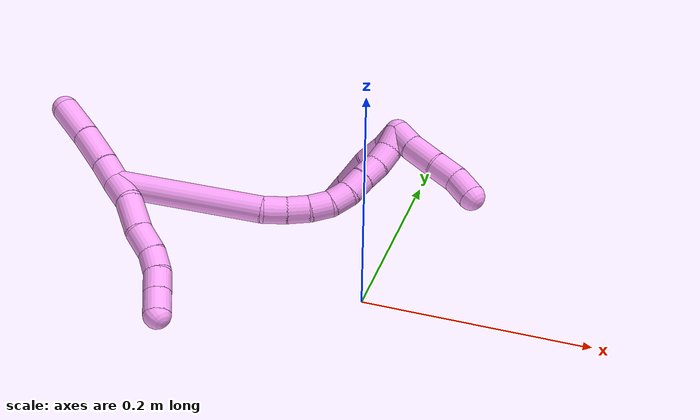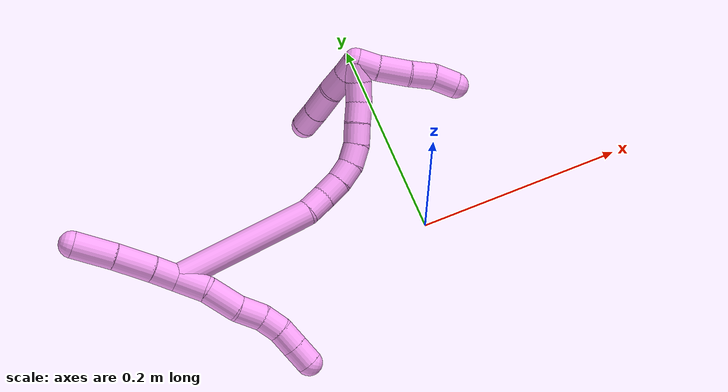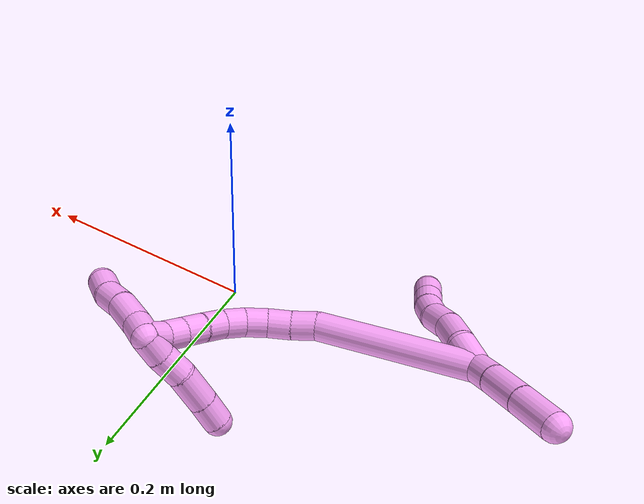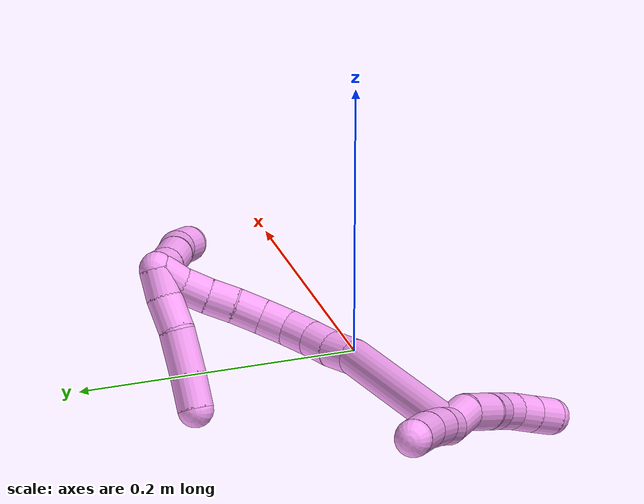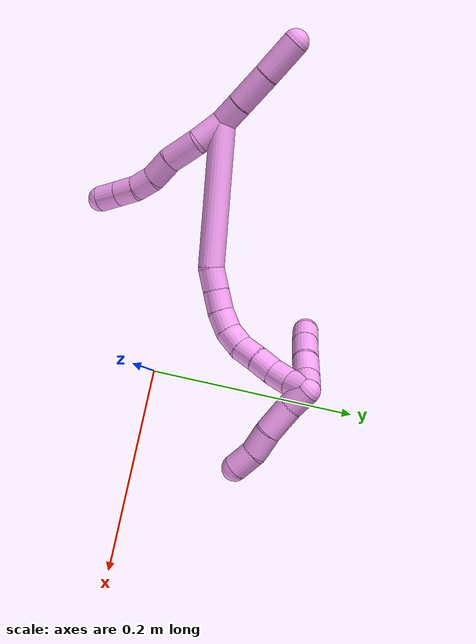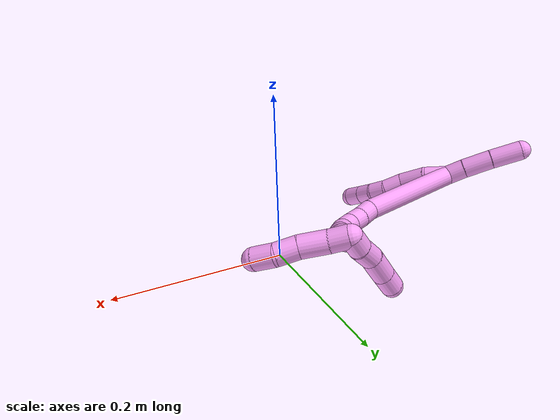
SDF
<sdf version="1.7">
 <world name="default">
  <model name="4">
   <static>0</static>
   <link name="4">
    <collision name="collision-cylinder-e_1_2_8">
     <pose>0.000804 -0.002881 -0.014358 2.94357 0.054824 0.538624</pose>
     <geometry><cylinder><radius>0.0125</radius><length>0.029332</length></cylinder></geometry>
     <surface>
      <friction><ode><mu>1.16</mu><mu2>1.16</mu2><slip1>0</slip1><slip2>0</slip2></ode></friction>
      <contact><ode><kp>1e+06</kp><kd>1</kd><max_vel>0</max_vel><min_depth>0.001</min_depth></ode></contact>
     </surface>
    </collision>
    <visual name="visual-cylinder-e_1_2_8">
     <pose>0.000804 -0.002881 -0.014358 2.94357 0.054824 0.538624</pose>
     <geometry><cylinder><radius>0.0125</radius><length>0.029332</length></cylinder></geometry>
     <material><ambient>1 0.65098 0.996078 1</ambient></material>
    </visual>
    <collision name="collision-cylinder-e_2_8_9">
     <pose>-0.002616 -0.007892 -0.044746 3.00948 -0.255462 -2.19031</pose>
     <geometry><cylinder><radius>0.0125</radius><length>0.033428</length></cylinder></geometry>
     <surface>
      <friction><ode><mu>1.16</mu><mu2>1.16</mu2><slip1>0</slip1><slip2>0</slip2></ode></friction>
      <contact><ode><kp>1e+06</kp><kd>1</kd><max_vel>0</max_vel><min_depth>0.001</min_depth></ode></contact>
     </surface>
    </collision>
    <visual name="visual-cylinder-e_2_8_9">
     <pose>-0.002616 -0.007892 -0.044746 3.00948 -0.255462 -2.19031</pose>
     <geometry><cylinder><radius>0.0125</radius><length>0.033428</length></cylinder></geometry>
     <material><ambient>1 0.65098 0.996078 1</ambient></material>
    </visual>
    <collision name="collision-cylinder-e_3_9_10">
     <pose>-0.008818 -0.009061 -0.073152 -3.06407 -0.158021 2.23069</pose>
     <geometry><cylinder><radius>0.0125</radius><length>0.025138</length></cylinder></geometry>
     <surface>
      <friction><ode><mu>1.16</mu><mu2>1.16</mu2><slip1>0</slip1><slip2>0</slip2></ode></friction>
      <contact><ode><kp>1e+06</kp><kd>1</kd><max_vel>0</max_vel><min_depth>0.001</min_depth></ode></contact>
     </surface>
    </collision>
    <visual name="visual-cylinder-e_3_9_10">
     <pose>-0.008818 -0.009061 -0.073152 -3.06407 -0.158021 2.23069</pose>
     <geometry><cylinder><radius>0.0125</radius><length>0.025138</length></cylinder></geometry>
     <material><ambient>1 0.65098 0.996078 1</ambient></material>
    </visual>
    <collision name="collision-cylinder-e_4_10_11">
     <pose>-0.013689 -0.009772 -0.095389 2.97368 -0.281579 -2.06991</pose>
     <geometry><cylinder><radius>0.0125</radius><length>0.020825</length></cylinder></geometry>
     <surface>
      <friction><ode><mu>1.16</mu><mu2>1.16</mu2><slip1>0</slip1><slip2>0</slip2></ode></friction>
      <contact><ode><kp>1e+06</kp><kd>1</kd><max_vel>0</max_vel><min_depth>0.001</min_depth></ode></contact>
     </surface>
    </collision>
    <visual name="visual-cylinder-e_4_10_11">
     <pose>-0.013689 -0.009772 -0.095389 2.97368 -0.281579 -2.06991</pose>
     <geometry><cylinder><radius>0.0125</radius><length>0.020825</length></cylinder></geometry>
     <material><ambient>1 0.65098 0.996078 1</ambient></material>
    </visual>
    <collision name="collision-cylinder-e_5_11_12">
     <pose>-0.021006 -0.014527 -0.113819 2.7961 -0.452286 -1.84392</pose>
     <geometry><cylinder><radius>0.0125</radius><length>0.020247</length></cylinder></geometry>
     <surface>
      <friction><ode><mu>1.16</mu><mu2>1.16</mu2><slip1>0</slip1><slip2>0</slip2></ode></friction>
      <contact><ode><kp>1e+06</kp><kd>1</kd><max_vel>0</max_vel><min_depth>0.001</min_depth></ode></contact>
     </surface>
    </collision>
    <visual name="visual-cylinder-e_5_11_12">
     <pose>-0.021006 -0.014527 -0.113819 2.7961 -0.452286 -1.84392</pose>
     <geometry><cylinder><radius>0.0125</radius><length>0.020247</length></cylinder></geometry>
     <material><ambient>1 0.65098 0.996078 1</ambient></material>
    </visual>
    <collision name="collision-cylinder-e_6_12_6">
     <pose>-0.029973 -0.020879 -0.131288 2.78973 -0.446759 -1.81359</pose>
     <geometry><cylinder><radius>0.0125</radius><length>0.02103</length></cylinder></geometry>
     <surface>
      <friction><ode><mu>1.16</mu><mu2>1.16</mu2><slip1>0</slip1><slip2>0</slip2></ode></friction>
      <contact><ode><kp>1e+06</kp><kd>1</kd><max_vel>0</max_vel><min_depth>0.001</min_depth></ode></contact>
     </surface>
    </collision>
    <visual name="visual-cylinder-e_6_12_6">
     <pose>-0.029973 -0.020879 -0.131288 2.78973 -0.446759 -1.81359</pose>
     <geometry><cylinder><radius>0.0125</radius><length>0.02103</length></cylinder></geometry>
     <material><ambient>1 0.65098 0.996078 1</ambient></material>
    </visual>
    <collision name="collision-cylinder-e_1_2_13">
     <pose>0.002009 -0.000947 0.011866 0.079607 0.167232 0.006675</pose>
     <geometry><cylinder><radius>0.0125</radius><length>0.024144</length></cylinder></geometry>
     <surface>
      <friction><ode><mu>1.16</mu><mu2>1.16</mu2><slip1>0</slip1><slip2>0</slip2></ode></friction>
      <contact><ode><kp>1e+06</kp><kd>1</kd><max_vel>0</max_vel><min_depth>0.001</min_depth></ode></contact>
     </surface>
    </collision>
    <visual name="visual-cylinder-e_1_2_13">
     <pose>0.002009 -0.000947 0.011866 0.079607 0.167232 0.006675</pose>
     <geometry><cylinder><radius>0.0125</radius><length>0.024144</length></cylinder></geometry>
     <material><ambient>1 0.65098 0.996078 1</ambient></material>
    </visual>
    <collision name="collision-cylinder-e_2_13_14">
     <pose>0.005857 -0.002946 0.041848 0.058053 0.100949 0.002934</pose>
     <geometry><cylinder><radius>0.0125</radius><length>0.03648</length></cylinder></geometry>
     <surface>
      <friction><ode><mu>1.16</mu><mu2>1.16</mu2><slip1>0</slip1><slip2>0</slip2></ode></friction>
      <contact><ode><kp>1e+06</kp><kd>1</kd><max_vel>0</max_vel><min_depth>0.001</min_depth></ode></contact>
     </surface>
    </collision>
    <visual name="visual-cylinder-e_2_13_14">
     <pose>0.005857 -0.002946 0.041848 0.058053 0.100949 0.002934</pose>
     <geometry><cylinder><radius>0.0125</radius><length>0.03648</length></cylinder></geometry>
     <material><ambient>1 0.65098 0.996078 1</ambient></material>
    </visual>
    <collision name="collision-cylinder-e_3_14_5">
     <pose>0.008512 -0.005016 0.07961 0.051728 0.04151 0.001074</pose>
     <geometry><cylinder><radius>0.0125</radius><length>0.039376</length></cylinder></geometry>
     <surface>
      <friction><ode><mu>1.16</mu><mu2>1.16</mu2><slip1>0</slip1><slip2>0</slip2></ode></friction>
      <contact><ode><kp>1e+06</kp><kd>1</kd><max_vel>0</max_vel><min_depth>0.001</min_depth></ode></contact>
     </surface>
    </collision>
    <visual name="visual-cylinder-e_3_14_5">
     <pose>0.008512 -0.005016 0.07961 0.051728 0.04151 0.001074</pose>
     <geometry><cylinder><radius>0.0125</radius><length>0.039376</length></cylinder></geometry>
     <material><ambient>1 0.65098 0.996078 1</ambient></material>
    </visual>
    <collision name="collision-cylinder-e_1_2_15">
     <pose>0.032575 0.03289 -0.050687 -2.566 0.494447 -1.41202</pose>
     <geometry><cylinder><radius>0.0125</radius><length>0.137288</length></cylinder></geometry>
     <surface>
      <friction><ode><mu>1.16</mu><mu2>1.16</mu2><slip1>0</slip1><slip2>0</slip2></ode></friction>
      <contact><ode><kp>1e+06</kp><kd>1</kd><max_vel>0</max_vel><min_depth>0.001</min_depth></ode></contact>
     </surface>
    </collision>
    <visual name="visual-cylinder-e_1_2_15">
     <pose>0.032575 0.03289 -0.050687 -2.566 0.494447 -1.41202</pose>
     <geometry><cylinder><radius>0.0125</radius><length>0.137288</length></cylinder></geometry>
     <material><ambient>1 0.65098 0.996078 1</ambient></material>
    </visual>
    <collision name="collision-cylinder-e_2_15_16">
     <pose>0.07084 0.073128 -0.107112 -2.23378 0.548039 -1.04539</pose>
     <geometry><cylinder><radius>0.0125</radius><length>0.021846</length></cylinder></geometry>
     <surface>
      <friction><ode><mu>1.16</mu><mu2>1.16</mu2><slip1>0</slip1><slip2>0</slip2></ode></friction>
      <contact><ode><kp>1e+06</kp><kd>1</kd><max_vel>0</max_vel><min_depth>0.001</min_depth></ode></contact>
     </surface>
    </collision>
    <visual name="visual-cylinder-e_2_15_16">
     <pose>0.07084 0.073128 -0.107112 -2.23378 0.548039 -1.04539</pose>
     <geometry><cylinder><radius>0.0125</radius><length>0.021846</length></cylinder></geometry>
     <material><ambient>1 0.65098 0.996078 1</ambient></material>
    </visual>
    <collision name="collision-cylinder-e_3_16_17">
     <pose>0.082886 0.086812 -0.11799 -2.25242 0.661765 -1.24944</pose>
     <geometry><cylinder><radius>0.0125</radius><length>0.020682</length></cylinder></geometry>
     <surface>
      <friction><ode><mu>1.16</mu><mu2>1.16</mu2><slip1>0</slip1><slip2>0</slip2></ode></friction>
      <contact><ode><kp>1e+06</kp><kd>1</kd><max_vel>0</max_vel><min_depth>0.001</min_depth></ode></contact>
     </surface>
    </collision>
    <visual name="visual-cylinder-e_3_16_17">
     <pose>0.082886 0.086812 -0.11799 -2.25242 0.661765 -1.24944</pose>
     <geometry><cylinder><radius>0.0125</radius><length>0.020682</length></cylinder></geometry>
     <material><ambient>1 0.65098 0.996078 1</ambient></material>
    </visual>
    <collision name="collision-cylinder-e_4_17_18">
     <pose>0.096098 0.099654 -0.126452 -2.04283 0.753715 -1.14771</pose>
     <geometry><cylinder><radius>0.0125</radius><length>0.02004</length></cylinder></geometry>
     <surface>
      <friction><ode><mu>1.16</mu><mu2>1.16</mu2><slip1>0</slip1><slip2>0</slip2></ode></friction>
      <contact><ode><kp>1e+06</kp><kd>1</kd><max_vel>0</max_vel><min_depth>0.001</min_depth></ode></contact>
     </surface>
    </collision>
    <visual name="visual-cylinder-e_4_17_18">
     <pose>0.096098 0.099654 -0.126452 -2.04283 0.753715 -1.14771</pose>
     <geometry><cylinder><radius>0.0125</radius><length>0.02004</length></cylinder></geometry>
     <material><ambient>1 0.65098 0.996078 1</ambient></material>
    </visual>
    <collision name="collision-cylinder-e_5_18_19">
     <pose>0.110647 0.112602 -0.130005 -1.60663 0.873359 -0.901149</pose>
     <geometry><cylinder><radius>0.0125</radius><length>0.020071</length></cylinder></geometry>
     <surface>
      <friction><ode><mu>1.16</mu><mu2>1.16</mu2><slip1>0</slip1><slip2>0</slip2></ode></friction>
      <contact><ode><kp>1e+06</kp><kd>1</kd><max_vel>0</max_vel><min_depth>0.001</min_depth></ode></contact>
     </surface>
    </collision>
    <visual name="visual-cylinder-e_5_18_19">
     <pose>0.110647 0.112602 -0.130005 -1.60663 0.873359 -0.901149</pose>
     <geometry><cylinder><radius>0.0125</radius><length>0.020071</length></cylinder></geometry>
     <material><ambient>1 0.65098 0.996078 1</ambient></material>
    </visual>
    <collision name="collision-cylinder-e_6_19_20">
     <pose>0.126118 0.124891 -0.127813 -1.17803 0.887785 -0.61528</pose>
     <geometry><cylinder><radius>0.0125</radius><length>0.020057</length></cylinder></geometry>
     <surface>
      <friction><ode><mu>1.16</mu><mu2>1.16</mu2><slip1>0</slip1><slip2>0</slip2></ode></friction>
      <contact><ode><kp>1e+06</kp><kd>1</kd><max_vel>0</max_vel><min_depth>0.001</min_depth></ode></contact>
     </surface>
    </collision>
    <visual name="visual-cylinder-e_6_19_20">
     <pose>0.126118 0.124891 -0.127813 -1.17803 0.887785 -0.61528</pose>
     <geometry><cylinder><radius>0.0125</radius><length>0.020057</length></cylinder></geometry>
     <material><ambient>1 0.65098 0.996078 1</ambient></material>
    </visual>
    <collision name="collision-cylinder-e_7_20_21">
     <pose>0.141335 0.137157 -0.123488 -1.28254 0.837868 -0.641857</pose>
     <geometry><cylinder><radius>0.0125</radius><length>0.020015</length></cylinder></geometry>
     <surface>
      <friction><ode><mu>1.16</mu><mu2>1.16</mu2><slip1>0</slip1><slip2>0</slip2></ode></friction>
      <contact><ode><kp>1e+06</kp><kd>1</kd><max_vel>0</max_vel><min_depth>0.001</min_depth></ode></contact>
     </surface>
    </collision>
    <visual name="visual-cylinder-e_7_20_21">
     <pose>0.141335 0.137157 -0.123488 -1.28254 0.837868 -0.641857</pose>
     <geometry><cylinder><radius>0.0125</radius><length>0.020015</length></cylinder></geometry>
     <material><ambient>1 0.65098 0.996078 1</ambient></material>
    </visual>
    <collision name="collision-cylinder-e_8_21_22">
     <pose>0.156578 0.148939 -0.118372 -1.0311 0.895544 -0.531478</pose>
     <geometry><cylinder><radius>0.0125</radius><length>0.020001</length></cylinder></geometry>
     <surface>
      <friction><ode><mu>1.16</mu><mu2>1.16</mu2><slip1>0</slip1><slip2>0</slip2></ode></friction>
      <contact><ode><kp>1e+06</kp><kd>1</kd><max_vel>0</max_vel><min_depth>0.001</min_depth></ode></contact>
     </surface>
    </collision>
    <visual name="visual-cylinder-e_8_21_22">
     <pose>0.156578 0.148939 -0.118372 -1.0311 0.895544 -0.531478</pose>
     <geometry><cylinder><radius>0.0125</radius><length>0.020001</length></cylinder></geometry>
     <material><ambient>1 0.65098 0.996078 1</ambient></material>
    </visual>
    <collision name="collision-cylinder-e_9_22_1">
     <pose>0.172805 0.157715 -0.110982 -0.685047 1.00105 -0.385248</pose>
     <geometry><cylinder><radius>0.0125</radius><length>0.02</length></cylinder></geometry>
     <surface>
      <friction><ode><mu>1.16</mu><mu2>1.16</mu2><slip1>0</slip1><slip2>0</slip2></ode></friction>
      <contact><ode><kp>1e+06</kp><kd>1</kd><max_vel>0</max_vel><min_depth>0.001</min_depth></ode></contact>
     </surface>
    </collision>
    <visual name="visual-cylinder-e_9_22_1">
     <pose>0.172805 0.157715 -0.110982 -0.685047 1.00105 -0.385248</pose>
     <geometry><cylinder><radius>0.0125</radius><length>0.02</length></cylinder></geometry>
     <material><ambient>1 0.65098 0.996078 1</ambient></material>
    </visual>
    <collision name="collision-cylinder-e_1_1_23">
     <pose>0.181006 0.161237 -0.117609 -3.13152 -0.020274 2.21977</pose>
     <geometry><cylinder><radius>0.0125</radius><length>0.021614</length></cylinder></geometry>
     <surface>
      <friction><ode><mu>1.16</mu><mu2>1.16</mu2><slip1>0</slip1><slip2>0</slip2></ode></friction>
      <contact><ode><kp>1e+06</kp><kd>1</kd><max_vel>0</max_vel><min_depth>0.001</min_depth></ode></contact>
     </surface>
    </collision>
    <visual name="visual-cylinder-e_1_1_23">
     <pose>0.181006 0.161237 -0.117609 -3.13152 -0.020274 2.21977</pose>
     <geometry><cylinder><radius>0.0125</radius><length>0.021614</length></cylinder></geometry>
     <material><ambient>1 0.65098 0.996078 1</ambient></material>
    </visual>
    <collision name="collision-cylinder-e_2_23_24">
     <pose>0.182695 0.161854 -0.143777 -3.10851 0.123479 -2.61865</pose>
     <geometry><cylinder><radius>0.0125</radius><length>0.03098</length></cylinder></geometry>
     <surface>
      <friction><ode><mu>1.16</mu><mu2>1.16</mu2><slip1>0</slip1><slip2>0</slip2></ode></friction>
      <contact><ode><kp>1e+06</kp><kd>1</kd><max_vel>0</max_vel><min_depth>0.001</min_depth></ode></contact>
     </surface>
    </collision>
    <visual name="visual-cylinder-e_2_23_24">
     <pose>0.182695 0.161854 -0.143777 -3.10851 0.123479 -2.61865</pose>
     <geometry><cylinder><radius>0.0125</radius><length>0.03098</length></cylinder></geometry>
     <material><ambient>1 0.65098 0.996078 1</ambient></material>
    </visual>
    <collision name="collision-cylinder-e_3_24_25">
     <pose>0.185857 0.16454 -0.170816 -2.95718 0.105211 -1.03528</pose>
     <geometry><cylinder><radius>0.0125</radius><length>0.023885</length></cylinder></geometry>
     <surface>
      <friction><ode><mu>1.16</mu><mu2>1.16</mu2><slip1>0</slip1><slip2>0</slip2></ode></friction>
      <contact><ode><kp>1e+06</kp><kd>1</kd><max_vel>0</max_vel><min_depth>0.001</min_depth></ode></contact>
     </surface>
    </collision>
    <visual name="visual-cylinder-e_3_24_25">
     <pose>0.185857 0.16454 -0.170816 -2.95718 0.105211 -1.03528</pose>
     <geometry><cylinder><radius>0.0125</radius><length>0.023885</length></cylinder></geometry>
     <material><ambient>1 0.65098 0.996078 1</ambient></material>
    </visual>
    <collision name="collision-cylinder-e_4_25_4">
     <pose>0.186506 0.166162 -0.194223 3.09422 -0.051457 -1.65346</pose>
     <geometry><cylinder><radius>0.0125</radius><length>0.023521</length></cylinder></geometry>
     <surface>
      <friction><ode><mu>1.16</mu><mu2>1.16</mu2><slip1>0</slip1><slip2>0</slip2></ode></friction>
      <contact><ode><kp>1e+06</kp><kd>1</kd><max_vel>0</max_vel><min_depth>0.001</min_depth></ode></contact>
     </surface>
    </collision>
    <visual name="visual-cylinder-e_4_25_4">
     <pose>0.186506 0.166162 -0.194223 3.09422 -0.051457 -1.65346</pose>
     <geometry><cylinder><radius>0.0125</radius><length>0.023521</length></cylinder></geometry>
     <material><ambient>1 0.65098 0.996078 1</ambient></material>
    </visual>
    <collision name="collision-cylinder-e_1_1_26">
     <pose>0.171328 0.163217 -0.105069 -0.877432 -1.30301 0.687235</pose>
     <geometry><cylinder><radius>0.0125</radius><length>0.020526</length></cylinder></geometry>
     <surface>
      <friction><ode><mu>1.16</mu><mu2>1.16</mu2><slip1>0</slip1><slip2>0</slip2></ode></friction>
      <contact><ode><kp>1e+06</kp><kd>1</kd><max_vel>0</max_vel><min_depth>0.001</min_depth></ode></contact>
     </surface>
    </collision>
    <visual name="visual-cylinder-e_1_1_26">
     <pose>0.171328 0.163217 -0.105069 -0.877432 -1.30301 0.687235</pose>
     <geometry><cylinder><radius>0.0125</radius><length>0.020526</length></cylinder></geometry>
     <material><ambient>1 0.65098 0.996078 1</ambient></material>
    </visual>
    <collision name="collision-cylinder-e_2_26_27">
     <pose>0.14978 0.165917 -0.100044 -0.183856 -1.29117 0.138661</pose>
     <geometry><cylinder><radius>0.0125</radius><length>0.024243</length></cylinder></geometry>
     <surface>
      <friction><ode><mu>1.16</mu><mu2>1.16</mu2><slip1>0</slip1><slip2>0</slip2></ode></friction>
      <contact><ode><kp>1e+06</kp><kd>1</kd><max_vel>0</max_vel><min_depth>0.001</min_depth></ode></contact>
     </surface>
    </collision>
    <visual name="visual-cylinder-e_2_26_27">
     <pose>0.14978 0.165917 -0.100044 -0.183856 -1.29117 0.138661</pose>
     <geometry><cylinder><radius>0.0125</radius><length>0.024243</length></cylinder></geometry>
     <material><ambient>1 0.65098 0.996078 1</ambient></material>
    </visual>
    <collision name="collision-cylinder-e_3_27_28">
     <pose>0.122937 0.169796 -0.094164 -0.900196 -1.30289 0.70597</pose>
     <geometry><cylinder><radius>0.0125</radius><length>0.031509</length></cylinder></geometry>
     <surface>
      <friction><ode><mu>1.16</mu><mu2>1.16</mu2><slip1>0</slip1><slip2>0</slip2></ode></friction>
      <contact><ode><kp>1e+06</kp><kd>1</kd><max_vel>0</max_vel><min_depth>0.001</min_depth></ode></contact>
     </surface>
    </collision>
    <visual name="visual-cylinder-e_3_27_28">
     <pose>0.122937 0.169796 -0.094164 -0.900196 -1.30289 0.70597</pose>
     <geometry><cylinder><radius>0.0125</radius><length>0.031509</length></cylinder></geometry>
     <material><ambient>1 0.65098 0.996078 1</ambient></material>
    </visual>
    <collision name="collision-cylinder-e_4_28_3">
     <pose>0.096434 0.175837 -0.08932 -0.888971 -1.26486 0.671622</pose>
     <geometry><cylinder><radius>0.0125</radius><length>0.023722</length></cylinder></geometry>
     <surface>
      <friction><ode><mu>1.16</mu><mu2>1.16</mu2><slip1>0</slip1><slip2>0</slip2></ode></friction>
      <contact><ode><kp>1e+06</kp><kd>1</kd><max_vel>0</max_vel><min_depth>0.001</min_depth></ode></contact>
     </surface>
    </collision>
    <visual name="visual-cylinder-e_4_28_3">
     <pose>0.096434 0.175837 -0.08932 -0.888971 -1.26486 0.671622</pose>
     <geometry><cylinder><radius>0.0125</radius><length>0.023722</length></cylinder></geometry>
     <material><ambient>1 0.65098 0.996078 1</ambient></material>
    </visual>
    <collision name="collision-sphere-3">
     <pose>0.085124 0.17861 -0.087069 0 -0 0</pose>
     <geometry><sphere><radius>0.0125</radius></sphere></geometry>
     <surface>
      <friction><ode><mu>1.16</mu><mu2>1.16</mu2><slip1>0</slip1><slip2>0</slip2></ode></friction>
      <contact><ode><kp>1e+06</kp><kd>1</kd><max_vel>0</max_vel><min_depth>0.001</min_depth></ode></contact>
     </surface>
    </collision>
    <visual name="visual-sphere-3">
     <pose>0.085124 0.17861 -0.087069 0 -0 0</pose>
     <geometry><sphere><radius>0.0125</radius></sphere></geometry>
     <material><ambient>1 0.65098 0.996078 1</ambient></material>
    </visual>
    <collision name="collision-sphere-28">
     <pose>0.107745 0.173063 -0.091572 0 -0 0</pose>
     <geometry><sphere><radius>0.0125</radius></sphere></geometry>
     <surface>
      <friction><ode><mu>1.16</mu><mu2>1.16</mu2><slip1>0</slip1><slip2>0</slip2></ode></friction>
      <contact><ode><kp>1e+06</kp><kd>1</kd><max_vel>0</max_vel><min_depth>0.001</min_depth></ode></contact>
     </surface>
    </collision>
    <visual name="visual-sphere-28">
     <pose>0.107745 0.173063 -0.091572 0 -0 0</pose>
     <geometry><sphere><radius>0.0125</radius></sphere></geometry>
     <material><ambient>1 0.65098 0.996078 1</ambient></material>
    </visual>
    <collision name="collision-sphere-27">
     <pose>0.13813 0.166528 -0.096755 0 -0 0</pose>
     <geometry><sphere><radius>0.0125</radius></sphere></geometry>
     <surface>
      <friction><ode><mu>1.16</mu><mu2>1.16</mu2><slip1>0</slip1><slip2>0</slip2></ode></friction>
      <contact><ode><kp>1e+06</kp><kd>1</kd><max_vel>0</max_vel><min_depth>0.001</min_depth></ode></contact>
     </surface>
    </collision>
    <visual name="visual-sphere-27">
     <pose>0.13813 0.166528 -0.096755 0 -0 0</pose>
     <geometry><sphere><radius>0.0125</radius></sphere></geometry>
     <material><ambient>1 0.65098 0.996078 1</ambient></material>
    </visual>
    <collision name="collision-sphere-26">
     <pose>0.161431 0.165305 -0.103334 0 -0 0</pose>
     <geometry><sphere><radius>0.0125</radius></sphere></geometry>
     <surface>
      <friction><ode><mu>1.16</mu><mu2>1.16</mu2><slip1>0</slip1><slip2>0</slip2></ode></friction>
      <contact><ode><kp>1e+06</kp><kd>1</kd><max_vel>0</max_vel><min_depth>0.001</min_depth></ode></contact>
     </surface>
    </collision>
    <visual name="visual-sphere-26">
     <pose>0.161431 0.165305 -0.103334 0 -0 0</pose>
     <geometry><sphere><radius>0.0125</radius></sphere></geometry>
     <material><ambient>1 0.65098 0.996078 1</ambient></material>
    </visual>
    <collision name="collision-sphere-4">
     <pose>0.185901 0.165606 -0.205954 0 -0 0</pose>
     <geometry><sphere><radius>0.0125</radius></sphere></geometry>
     <surface>
      <friction><ode><mu>1.16</mu><mu2>1.16</mu2><slip1>0</slip1><slip2>0</slip2></ode></friction>
      <contact><ode><kp>1e+06</kp><kd>1</kd><max_vel>0</max_vel><min_depth>0.001</min_depth></ode></contact>
     </surface>
    </collision>
    <visual name="visual-sphere-4">
     <pose>0.185901 0.165606 -0.205954 0 -0 0</pose>
     <geometry><sphere><radius>0.0125</radius></sphere></geometry>
     <material><ambient>1 0.65098 0.996078 1</ambient></material>
    </visual>
    <collision name="collision-sphere-25">
     <pose>0.187111 0.166718 -0.182491 0 -0 0</pose>
     <geometry><sphere><radius>0.0125</radius></sphere></geometry>
     <surface>
      <friction><ode><mu>1.16</mu><mu2>1.16</mu2><slip1>0</slip1><slip2>0</slip2></ode></friction>
      <contact><ode><kp>1e+06</kp><kd>1</kd><max_vel>0</max_vel><min_depth>0.001</min_depth></ode></contact>
     </surface>
    </collision>
    <visual name="visual-sphere-25">
     <pose>0.187111 0.166718 -0.182491 0 -0 0</pose>
     <geometry><sphere><radius>0.0125</radius></sphere></geometry>
     <material><ambient>1 0.65098 0.996078 1</ambient></material>
    </visual>
    <collision name="collision-sphere-24">
     <pose>0.184603 0.162363 -0.159141 0 -0 0</pose>
     <geometry><sphere><radius>0.0125</radius></sphere></geometry>
     <surface>
      <friction><ode><mu>1.16</mu><mu2>1.16</mu2><slip1>0</slip1><slip2>0</slip2></ode></friction>
      <contact><ode><kp>1e+06</kp><kd>1</kd><max_vel>0</max_vel><min_depth>0.001</min_depth></ode></contact>
     </surface>
    </collision>
    <visual name="visual-sphere-24">
     <pose>0.184603 0.162363 -0.159141 0 -0 0</pose>
     <geometry><sphere><radius>0.0125</radius></sphere></geometry>
     <material><ambient>1 0.65098 0.996078 1</ambient></material>
    </visual>
    <collision name="collision-sphere-23">
     <pose>0.180787 0.161346 -0.128413 0 -0 0</pose>
     <geometry><sphere><radius>0.0125</radius></sphere></geometry>
     <surface>
      <friction><ode><mu>1.16</mu><mu2>1.16</mu2><slip1>0</slip1><slip2>0</slip2></ode></friction>
      <contact><ode><kp>1e+06</kp><kd>1</kd><max_vel>0</max_vel><min_depth>0.001</min_depth></ode></contact>
     </surface>
    </collision>
    <visual name="visual-sphere-23">
     <pose>0.180787 0.161346 -0.128413 0 -0 0</pose>
     <geometry><sphere><radius>0.0125</radius></sphere></geometry>
     <material><ambient>1 0.65098 0.996078 1</ambient></material>
    </visual>
    <collision name="collision-sphere-1">
     <pose>0.181225 0.161128 -0.106805 0 -0 0</pose>
     <geometry><sphere><radius>0.0125</radius></sphere></geometry>
     <surface>
      <friction><ode><mu>1.16</mu><mu2>1.16</mu2><slip1>0</slip1><slip2>0</slip2></ode></friction>
      <contact><ode><kp>1e+06</kp><kd>1</kd><max_vel>0</max_vel><min_depth>0.001</min_depth></ode></contact>
     </surface>
    </collision>
    <visual name="visual-sphere-1">
     <pose>0.181225 0.161128 -0.106805 0 -0 0</pose>
     <geometry><sphere><radius>0.0125</radius></sphere></geometry>
     <material><ambient>1 0.65098 0.996078 1</ambient></material>
    </visual>
    <collision name="collision-sphere-22">
     <pose>0.164384 0.154302 -0.115159 0 -0 0</pose>
     <geometry><sphere><radius>0.0125</radius></sphere></geometry>
     <surface>
      <friction><ode><mu>1.16</mu><mu2>1.16</mu2><slip1>0</slip1><slip2>0</slip2></ode></friction>
      <contact><ode><kp>1e+06</kp><kd>1</kd><max_vel>0</max_vel><min_depth>0.001</min_depth></ode></contact>
     </surface>
    </collision>
    <visual name="visual-sphere-22">
     <pose>0.164384 0.154302 -0.115159 0 -0 0</pose>
     <geometry><sphere><radius>0.0125</radius></sphere></geometry>
     <material><ambient>1 0.65098 0.996078 1</ambient></material>
    </visual>
    <collision name="collision-sphere-21">
     <pose>0.148772 0.143576 -0.121584 0 -0 0</pose>
     <geometry><sphere><radius>0.0125</radius></sphere></geometry>
     <surface>
      <friction><ode><mu>1.16</mu><mu2>1.16</mu2><slip1>0</slip1><slip2>0</slip2></ode></friction>
      <contact><ode><kp>1e+06</kp><kd>1</kd><max_vel>0</max_vel><min_depth>0.001</min_depth></ode></contact>
     </surface>
    </collision>
    <visual name="visual-sphere-21">
     <pose>0.148772 0.143576 -0.121584 0 -0 0</pose>
     <geometry><sphere><radius>0.0125</radius></sphere></geometry>
     <material><ambient>1 0.65098 0.996078 1</ambient></material>
    </visual>
    <collision name="collision-sphere-12">
     <pose>-0.02543 -0.017611 -0.122386 0 -0 0</pose>
     <geometry><sphere><radius>0.0125</radius></sphere></geometry>
     <surface>
      <friction><ode><mu>1.16</mu><mu2>1.16</mu2><slip1>0</slip1><slip2>0</slip2></ode></friction>
      <contact><ode><kp>1e+06</kp><kd>1</kd><max_vel>0</max_vel><min_depth>0.001</min_depth></ode></contact>
     </surface>
    </collision>
    <visual name="visual-sphere-12">
     <pose>-0.02543 -0.017611 -0.122386 0 -0 0</pose>
     <geometry><sphere><radius>0.0125</radius></sphere></geometry>
     <material><ambient>1 0.65098 0.996078 1</ambient></material>
    </visual>
    <collision name="collision-sphere-11">
     <pose>-0.016582 -0.011443 -0.105251 0 -0 0</pose>
     <geometry><sphere><radius>0.0125</radius></sphere></geometry>
     <surface>
      <friction><ode><mu>1.16</mu><mu2>1.16</mu2><slip1>0</slip1><slip2>0</slip2></ode></friction>
      <contact><ode><kp>1e+06</kp><kd>1</kd><max_vel>0</max_vel><min_depth>0.001</min_depth></ode></contact>
     </surface>
    </collision>
    <visual name="visual-sphere-11">
     <pose>-0.016582 -0.011443 -0.105251 0 -0 0</pose>
     <geometry><sphere><radius>0.0125</radius></sphere></geometry>
     <material><ambient>1 0.65098 0.996078 1</ambient></material>
    </visual>
    <collision name="collision-sphere-10">
     <pose>-0.010795 -0.0081 -0.085528 0 -0 0</pose>
     <geometry><sphere><radius>0.0125</radius></sphere></geometry>
     <surface>
      <friction><ode><mu>1.16</mu><mu2>1.16</mu2><slip1>0</slip1><slip2>0</slip2></ode></friction>
      <contact><ode><kp>1e+06</kp><kd>1</kd><max_vel>0</max_vel><min_depth>0.001</min_depth></ode></contact>
     </surface>
    </collision>
    <visual name="visual-sphere-10">
     <pose>-0.010795 -0.0081 -0.085528 0 -0 0</pose>
     <geometry><sphere><radius>0.0125</radius></sphere></geometry>
     <material><ambient>1 0.65098 0.996078 1</ambient></material>
    </visual>
    <collision name="collision-sphere-9">
     <pose>-0.00684 -0.010022 -0.060777 0 -0 0</pose>
     <geometry><sphere><radius>0.0125</radius></sphere></geometry>
     <surface>
      <friction><ode><mu>1.16</mu><mu2>1.16</mu2><slip1>0</slip1><slip2>0</slip2></ode></friction>
      <contact><ode><kp>1e+06</kp><kd>1</kd><max_vel>0</max_vel><min_depth>0.001</min_depth></ode></contact>
     </surface>
    </collision>
    <visual name="visual-sphere-9">
     <pose>-0.00684 -0.010022 -0.060777 0 -0 0</pose>
     <geometry><sphere><radius>0.0125</radius></sphere></geometry>
     <material><ambient>1 0.65098 0.996078 1</ambient></material>
    </visual>
    <collision name="collision-sphere-2">
     <geometry><sphere><radius>0.0125</radius></sphere></geometry>
     <surface>
      <friction><ode><mu>1.16</mu><mu2>1.16</mu2><slip1>0</slip1><slip2>0</slip2></ode></friction>
      <contact><ode><kp>1e+06</kp><kd>1</kd><max_vel>0</max_vel><min_depth>0.001</min_depth></ode></contact>
     </surface>
    </collision>
    <visual name="visual-sphere-2">
     <geometry><sphere><radius>0.0125</radius></sphere></geometry>
     <material><ambient>1 0.65098 0.996078 1</ambient></material>
    </visual>
    <collision name="collision-sphere-19">
     <pose>0.118339 0.119043 -0.130236 0 -0 0</pose>
     <geometry><sphere><radius>0.0125</radius></sphere></geometry>
     <surface>
      <friction><ode><mu>1.16</mu><mu2>1.16</mu2><slip1>0</slip1><slip2>0</slip2></ode></friction>
      <contact><ode><kp>1e+06</kp><kd>1</kd><max_vel>0</max_vel><min_depth>0.001</min_depth></ode></contact>
     </surface>
    </collision>
    <visual name="visual-sphere-19">
     <pose>0.118339 0.119043 -0.130236 0 -0 0</pose>
     <geometry><sphere><radius>0.0125</radius></sphere></geometry>
     <material><ambient>1 0.65098 0.996078 1</ambient></material>
    </visual>
    <collision name="collision-sphere-8">
     <pose>0.001607 -0.005762 -0.028716 0 -0 0</pose>
     <geometry><sphere><radius>0.0125</radius></sphere></geometry>
     <surface>
      <friction><ode><mu>1.16</mu><mu2>1.16</mu2><slip1>0</slip1><slip2>0</slip2></ode></friction>
      <contact><ode><kp>1e+06</kp><kd>1</kd><max_vel>0</max_vel><min_depth>0.001</min_depth></ode></contact>
     </surface>
    </collision>
    <visual name="visual-sphere-8">
     <pose>0.001607 -0.005762 -0.028716 0 -0 0</pose>
     <geometry><sphere><radius>0.0125</radius></sphere></geometry>
     <material><ambient>1 0.65098 0.996078 1</ambient></material>
    </visual>
    <collision name="collision-sphere-6">
     <pose>-0.034516 -0.024147 -0.14019 0 -0 0</pose>
     <geometry><sphere><radius>0.0125</radius></sphere></geometry>
     <surface>
      <friction><ode><mu>1.16</mu><mu2>1.16</mu2><slip1>0</slip1><slip2>0</slip2></ode></friction>
      <contact><ode><kp>1e+06</kp><kd>1</kd><max_vel>0</max_vel><min_depth>0.001</min_depth></ode></contact>
     </surface>
    </collision>
    <visual name="visual-sphere-6">
     <pose>-0.034516 -0.024147 -0.14019 0 -0 0</pose>
     <geometry><sphere><radius>0.0125</radius></sphere></geometry>
     <material><ambient>1 0.65098 0.996078 1</ambient></material>
    </visual>
    <collision name="collision-sphere-13">
     <pose>0.004019 -0.001893 0.023732 0 -0 0</pose>
     <geometry><sphere><radius>0.0125</radius></sphere></geometry>
     <surface>
      <friction><ode><mu>1.16</mu><mu2>1.16</mu2><slip1>0</slip1><slip2>0</slip2></ode></friction>
      <contact><ode><kp>1e+06</kp><kd>1</kd><max_vel>0</max_vel><min_depth>0.001</min_depth></ode></contact>
     </surface>
    </collision>
    <visual name="visual-sphere-13">
     <pose>0.004019 -0.001893 0.023732 0 -0 0</pose>
     <geometry><sphere><radius>0.0125</radius></sphere></geometry>
     <material><ambient>1 0.65098 0.996078 1</ambient></material>
    </visual>
    <collision name="collision-sphere-14">
     <pose>0.007695 -0.003999 0.059965 0 -0 0</pose>
     <geometry><sphere><radius>0.0125</radius></sphere></geometry>
     <surface>
      <friction><ode><mu>1.16</mu><mu2>1.16</mu2><slip1>0</slip1><slip2>0</slip2></ode></friction>
      <contact><ode><kp>1e+06</kp><kd>1</kd><max_vel>0</max_vel><min_depth>0.001</min_depth></ode></contact>
     </surface>
    </collision>
    <visual name="visual-sphere-14">
     <pose>0.007695 -0.003999 0.059965 0 -0 0</pose>
     <geometry><sphere><radius>0.0125</radius></sphere></geometry>
     <material><ambient>1 0.65098 0.996078 1</ambient></material>
    </visual>
    <collision name="collision-sphere-5">
     <pose>0.009329 -0.006033 0.099254 0 -0 0</pose>
     <geometry><sphere><radius>0.0125</radius></sphere></geometry>
     <surface>
      <friction><ode><mu>1.16</mu><mu2>1.16</mu2><slip1>0</slip1><slip2>0</slip2></ode></friction>
      <contact><ode><kp>1e+06</kp><kd>1</kd><max_vel>0</max_vel><min_depth>0.001</min_depth></ode></contact>
     </surface>
    </collision>
    <visual name="visual-sphere-5">
     <pose>0.009329 -0.006033 0.099254 0 -0 0</pose>
     <geometry><sphere><radius>0.0125</radius></sphere></geometry>
     <material><ambient>1 0.65098 0.996078 1</ambient></material>
    </visual>
    <collision name="collision-sphere-15">
     <pose>0.065149 0.06578 -0.101373 0 -0 0</pose>
     <geometry><sphere><radius>0.0125</radius></sphere></geometry>
     <surface>
      <friction><ode><mu>1.16</mu><mu2>1.16</mu2><slip1>0</slip1><slip2>0</slip2></ode></friction>
      <contact><ode><kp>1e+06</kp><kd>1</kd><max_vel>0</max_vel><min_depth>0.001</min_depth></ode></contact>
     </surface>
    </collision>
    <visual name="visual-sphere-15">
     <pose>0.065149 0.06578 -0.101373 0 -0 0</pose>
     <geometry><sphere><radius>0.0125</radius></sphere></geometry>
     <material><ambient>1 0.65098 0.996078 1</ambient></material>
    </visual>
    <collision name="collision-sphere-16">
     <pose>0.076532 0.080477 -0.11285 0 -0 0</pose>
     <geometry><sphere><radius>0.0125</radius></sphere></geometry>
     <surface>
      <friction><ode><mu>1.16</mu><mu2>1.16</mu2><slip1>0</slip1><slip2>0</slip2></ode></friction>
      <contact><ode><kp>1e+06</kp><kd>1</kd><max_vel>0</max_vel><min_depth>0.001</min_depth></ode></contact>
     </surface>
    </collision>
    <visual name="visual-sphere-16">
     <pose>0.076532 0.080477 -0.11285 0 -0 0</pose>
     <geometry><sphere><radius>0.0125</radius></sphere></geometry>
     <material><ambient>1 0.65098 0.996078 1</ambient></material>
    </visual>
    <collision name="collision-sphere-17">
     <pose>0.089241 0.093147 -0.12313 0 -0 0</pose>
     <geometry><sphere><radius>0.0125</radius></sphere></geometry>
     <surface>
      <friction><ode><mu>1.16</mu><mu2>1.16</mu2><slip1>0</slip1><slip2>0</slip2></ode></friction>
      <contact><ode><kp>1e+06</kp><kd>1</kd><max_vel>0</max_vel><min_depth>0.001</min_depth></ode></contact>
     </surface>
    </collision>
    <visual name="visual-sphere-17">
     <pose>0.089241 0.093147 -0.12313 0 -0 0</pose>
     <geometry><sphere><radius>0.0125</radius></sphere></geometry>
     <material><ambient>1 0.65098 0.996078 1</ambient></material>
    </visual>
    <collision name="collision-sphere-18">
     <pose>0.102955 0.106161 -0.129774 0 -0 0</pose>
     <geometry><sphere><radius>0.0125</radius></sphere></geometry>
     <surface>
      <friction><ode><mu>1.16</mu><mu2>1.16</mu2><slip1>0</slip1><slip2>0</slip2></ode></friction>
      <contact><ode><kp>1e+06</kp><kd>1</kd><max_vel>0</max_vel><min_depth>0.001</min_depth></ode></contact>
     </surface>
    </collision>
    <visual name="visual-sphere-18">
     <pose>0.102955 0.106161 -0.129774 0 -0 0</pose>
     <geometry><sphere><radius>0.0125</radius></sphere></geometry>
     <material><ambient>1 0.65098 0.996078 1</ambient></material>
    </visual>
    <collision name="collision-sphere-20">
     <pose>0.133897 0.130738 -0.125391 0 -0 0</pose>
     <geometry><sphere><radius>0.0125</radius></sphere></geometry>
     <surface>
      <friction><ode><mu>1.16</mu><mu2>1.16</mu2><slip1>0</slip1><slip2>0</slip2></ode></friction>
      <contact><ode><kp>1e+06</kp><kd>1</kd><max_vel>0</max_vel><min_depth>0.001</min_depth></ode></contact>
     </surface>
    </collision>
    <visual name="visual-sphere-20">
     <pose>0.133897 0.130738 -0.125391 0 -0 0</pose>
     <geometry><sphere><radius>0.0125</radius></sphere></geometry>
     <material><ambient>1 0.65098 0.996078 1</ambient></material>
    </visual>
    <inertial>
     <pose>0.072673 0.073253 -0.076903 0 -0 0</pose>
     <mass>0.75</mass>
     <inertia>
      <ixx>-0.000153</ixx>
      <ixy>0</ixy>
      <ixz>0</ixz>
      <iyy>-0.000129</iyy>
      <iyz>0</iyz>
      <izz>-0.000233</izz>
     </inertia>
    </inertial>
   </link>
   <pose>-0.241478 0.017465 0.065106 -1.09268 -0.915236 0.589878</pose>
  </model>
 </world>
</sdf>
